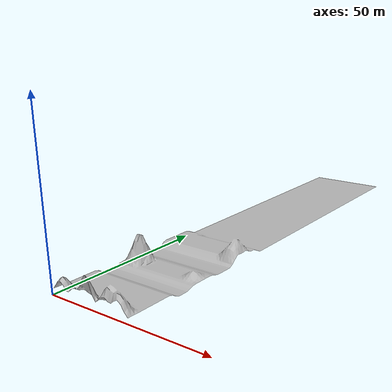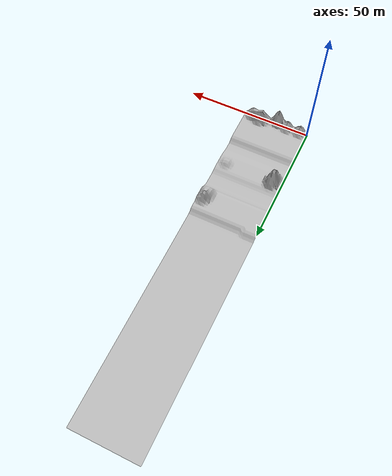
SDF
<?xml version="1.0"?>
<sdf version="1.6">
    <model name="river_mountain">
        <static>true</static>
        <link name="link">
            <visual name="visual">
                <geometry>
                    <mesh>
                        <uri>
                            file://models/demo_cross_river/mesh/visual_5_3__1.dae
                        </uri>
                        <scale>0.35 0.35 0.35</scale>
                    </mesh>
                </geometry>
            </visual>
            <collision name="coll">
                <geometry>
                    <mesh>
                        <uri>
                            file://models/demo_cross_river/mesh/coll_5_3__1.dae
                        </uri>
                        <scale>0.35 0.35 0.35</scale>
                    </mesh>
                </geometry>
                <surface>
                    <friction>
                      <ode>
                        <mu>0.8</mu>  <!-- 摩擦系数 -->
                        <mu2>0.8</mu2>
                      </ode>
                    </friction>
                  </surface>
            </collision>
        </link>
    </model>
</sdf>
